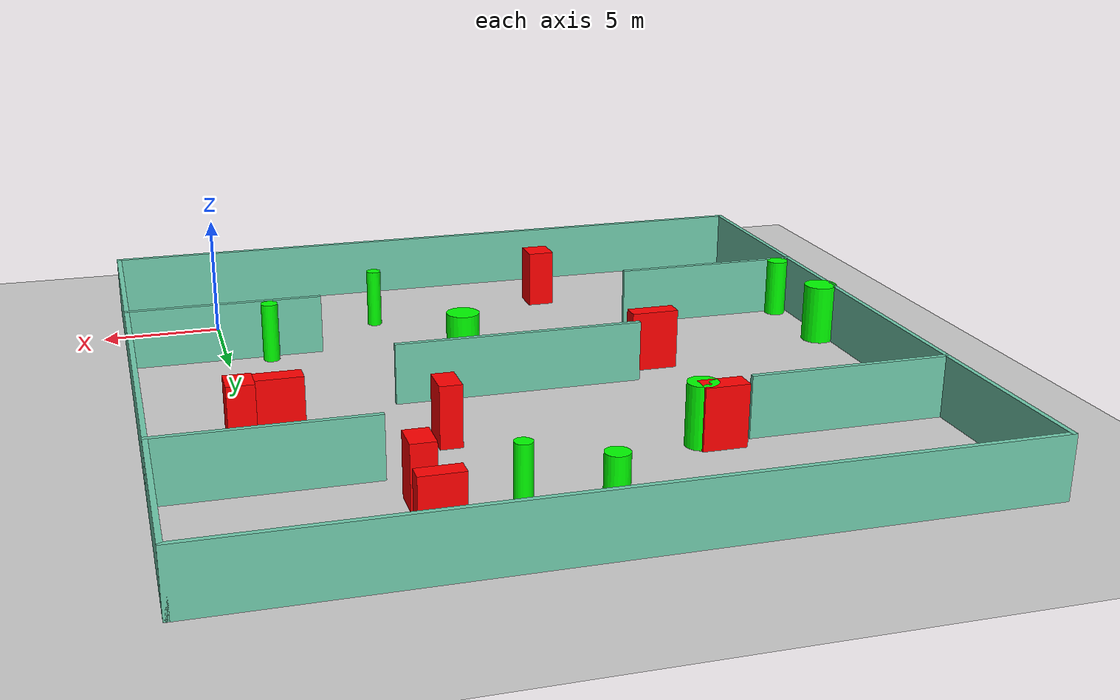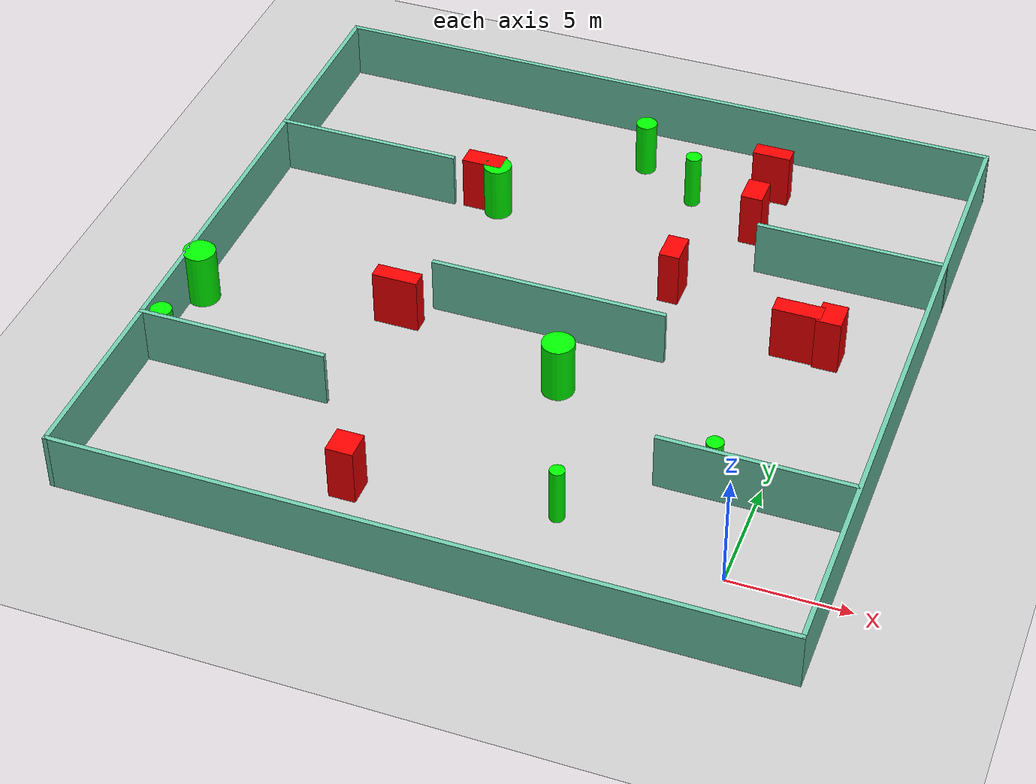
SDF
<sdf version="1.7">
 <world name="default">
  <light name="sun" type="directional">
   <pose>0 0 10 0 -0 0</pose>
   <diffuse>0.8 0.8 0.8 1</diffuse>
   <specular>0.2 0.2 0.2 1</specular>
   <attenuation>
    <range>1000</range>
    <constant>0.9</constant>
    <linear>0.01</linear>
    <quadratic>0.001</quadratic>
   </attenuation>
   <direction>-0.5 0.1 -0.9</direction>
   <spot><inner_angle>0</inner_angle><outer_angle>0</outer_angle><falloff>0</falloff></spot>
  </light>
  <model name="ground_plane">
   <static>1</static>
   <link name="link">
    <collision name="collision">
     <geometry><plane><normal>0 0 1</normal><size>100 100</size></plane></geometry>
     <surface>
      <contact><collide_bitmask>65535</collide_bitmask></contact>
      <friction><ode><mu>100</mu><mu2>50</mu2></ode></friction>
     </surface>
    </collision>
    <visual name="visual">
     <cast_shadows>0</cast_shadows>
     <geometry><plane><normal>0 0 1</normal><size>100 100</size></plane></geometry>
     <material>
      <script><uri>file://media/materials/scripts/gazebo.material</uri><name>Gazebo/Grey</name></script>
     </material>
    </visual>
   </link>
  </model>
  <gravity>0 0 -9.8</gravity>
  <magnetic_field>6e-06 2.3e-05 -4.2e-05</magnetic_field>
  <atmosphere type="adiabatic"/>
  <physics type="ode">
   <max_step_size>0.001</max_step_size>
   <real_time_factor>1</real_time_factor>
   <real_time_update_rate>1000</real_time_update_rate>
  </physics>
  <scene><ambient>0.4 0.4 0.4 1</ambient><background>0.7 0.7 0.7 1</background><shadows>1</shadows></scene>
  <spherical_coordinates>
   <surface_model>EARTH_WGS84</surface_model>
   <latitude_deg>0</latitude_deg>
   <longitude_deg>0</longitude_deg>
   <elevation>0</elevation>
   <heading_deg>0</heading_deg>
  </spherical_coordinates>
  <model name="my_base_walls">
   <link name="Wall_10">
    <collision name="Wall_10_Collision">
     <geometry><box><size>8.2 0.2 2.5</size></box></geometry>
     <pose>0 0 1.25 0 -0 0</pose>
    </collision>
    <visual name="Wall_10_Visual">
     <pose>0 0 1.25 0 -0 0</pose>
     <geometry><box><size>8.2 0.2 2.5</size></box></geometry>
     <material>
      <script><uri>file://media/materials/scripts/gazebo.material</uri><name>Gazebo/Grey</name></script>
      <ambient>0.435294 0.796078 0.67451 1</ambient>
     </material>
     <meta><layer>0</layer></meta>
    </visual>
    <pose>-11 -7 0 0 -0 0</pose>
   </link>
   <link name="Wall_12">
    <collision name="Wall_12_Collision">
     <geometry><box><size>8.2 0.2 2.5</size></box></geometry>
     <pose>0 0 1.25 0 -0 0</pose>
    </collision>
    <visual name="Wall_12_Visual">
     <pose>0 0 1.25 0 -0 0</pose>
     <geometry><box><size>8.2 0.2 2.5</size></box></geometry>
     <material>
      <script><uri>file://media/materials/scripts/gazebo.material</uri><name>Gazebo/Grey</name></script>
      <ambient>0.435294 0.796078 0.67451 1</ambient>
     </material>
     <meta><layer>0</layer></meta>
    </visual>
    <pose>-11 7 0 0 -0 0</pose>
   </link>
   <link name="Wall_14">
    <collision name="Wall_14_Collision">
     <geometry><box><size>8.2 0.2 2.5</size></box></geometry>
     <pose>0 0 1.25 0 -0 0</pose>
    </collision>
    <visual name="Wall_14_Visual">
     <pose>0 0 1.25 0 -0 0</pose>
     <geometry><box><size>8.2 0.2 2.5</size></box></geometry>
     <material>
      <script><uri>file://media/materials/scripts/gazebo.material</uri><name>Gazebo/Grey</name></script>
      <ambient>0.435294 0.796078 0.67451 1</ambient>
     </material>
     <meta><layer>0</layer></meta>
    </visual>
    <pose>11 7 0 0 -0 3.14159</pose>
   </link>
   <link name="Wall_16">
    <collision name="Wall_16_Collision">
     <geometry><box><size>10.2 0.2 2.5</size></box></geometry>
     <pose>0 0 1.25 0 -0 0</pose>
    </collision>
    <visual name="Wall_16_Visual">
     <pose>0 0 1.25 0 -0 0</pose>
     <geometry><box><size>10.2 0.2 2.5</size></box></geometry>
     <material>
      <script><uri>file://media/materials/scripts/gazebo.material</uri><name>Gazebo/Grey</name></script>
      <ambient>0.435294 0.796078 0.67451 1</ambient>
     </material>
     <meta><layer>0</layer></meta>
    </visual>
    <pose>0 0 0 0 -0 3.14159</pose>
   </link>
   <link name="Wall_2">
    <collision name="Wall_2_Collision">
     <geometry><box><size>30.2 0.2 2.5</size></box></geometry>
     <pose>0 0 1.25 0 -0 0</pose>
    </collision>
    <visual name="Wall_2_Visual">
     <pose>0 0 1.25 0 -0 0</pose>
     <geometry><box><size>30.2 0.2 2.5</size></box></geometry>
     <material>
      <script><uri>file://media/materials/scripts/gazebo.material</uri><name>Gazebo/Grey</name></script>
      <ambient>0.435294 0.796078 0.67451 1</ambient>
     </material>
     <meta><layer>0</layer></meta>
    </visual>
    <pose>0 -15 0 0 -0 3.14159</pose>
   </link>
   <link name="Wall_3">
    <collision name="Wall_3_Collision">
     <geometry><box><size>30.2 0.2 2.5</size></box></geometry>
     <pose>0 0 1.25 0 -0 0</pose>
    </collision>
    <visual name="Wall_3_Visual">
     <pose>0 0 1.25 0 -0 0</pose>
     <geometry><box><size>30.2 0.2 2.5</size></box></geometry>
     <material>
      <script><uri>file://media/materials/scripts/gazebo.material</uri><name>Gazebo/Grey</name></script>
      <ambient>0.435294 0.796078 0.67451 1</ambient>
     </material>
     <meta><layer>0</layer></meta>
    </visual>
    <pose>-15 0 0 0 -0 1.5708</pose>
   </link>
   <link name="Wall_4">
    <collision name="Wall_4_Collision">
     <geometry><box><size>30.2 0.2 2.5</size></box></geometry>
     <pose>0 0 1.25 0 -0 0</pose>
    </collision>
    <visual name="Wall_4_Visual">
     <pose>0 0 1.25 0 -0 0</pose>
     <geometry><box><size>30.2 0.2 2.5</size></box></geometry>
     <material>
      <script><uri>file://media/materials/scripts/gazebo.material</uri><name>Gazebo/Grey</name></script>
      <ambient>0.435294 0.796078 0.67451 1</ambient>
     </material>
     <meta><layer>0</layer></meta>
    </visual>
    <pose>0 15 0 0 -0 0</pose>
   </link>
   <link name="Wall_6">
    <collision name="Wall_6_Collision">
     <geometry><box><size>30.2 0.2 2.5</size></box></geometry>
     <pose>0 0 1.25 0 -0 0</pose>
    </collision>
    <visual name="Wall_6_Visual">
     <pose>0 0 1.25 0 -0 0</pose>
     <geometry><box><size>30.2 0.2 2.5</size></box></geometry>
     <material>
      <script><uri>file://media/materials/scripts/gazebo.material</uri><name>Gazebo/Grey</name></script>
      <ambient>0.435294 0.796078 0.67451 1</ambient>
     </material>
     <meta><layer>0</layer></meta>
    </visual>
    <pose>15 0 0 0 -0 1.5708</pose>
   </link>
   <link name="Wall_8">
    <collision name="Wall_8_Collision">
     <geometry><box><size>8.2 0.2 2.5</size></box></geometry>
     <pose>0 0 1.25 0 -0 0</pose>
    </collision>
    <visual name="Wall_8_Visual">
     <pose>0 0 1.25 0 -0 0</pose>
     <geometry><box><size>8.2 0.2 2.5</size></box></geometry>
     <material>
      <script><uri>file://media/materials/scripts/gazebo.material</uri><name>Gazebo/Grey</name></script>
      <ambient>0.435294 0.796078 0.67451 1</ambient>
     </material>
     <meta><layer>0</layer></meta>
    </visual>
    <pose>11 -7 0 0 -0 3.14159</pose>
   </link>
   <static>1</static>
   <pose>-11 11 0 0 -0 0</pose>
  </model>
  <model name="cylinder1">
   <static>1</static>
   <link name="link">
    <inertial>
     <mass>1</mass>
     <inertia><ixx>0.5</ixx><ixy>0</ixy><ixz>0</ixz><iyy>0.5</iyy><iyz>0</iyz><izz>1</izz></inertia>
    </inertial>
    <collision name="collision">
     <geometry><cylinder><radius>0.34516709502620163</radius><length>2.5</length></cylinder></geometry>
    </collision>
    <visual name="visual">
     <geometry><cylinder><radius>0.34516709502620163</radius><length>2.5</length></cylinder></geometry>
     <material>
      <ambient>0 1 0 1</ambient>
      <diffuse>0 1 0 1</diffuse>
      <specular>0.1 0.1 0.1 1</specular>
      <emissive>0 0 0 0</emissive>
     </material>
    </visual>
   </link>
   <pose>-8.061820041374391 21.654922493705 1.25 0 0 0</pose>
  </model>
  <model name="cylinder2">
   <static>1</static>
   <link name="link">
    <inertial>
     <mass>1</mass>
     <inertia><ixx>0.5</ixx><ixy>0</ixy><ixz>0</ixz><iyy>0.5</iyy><iyz>0</iyz><izz>1</izz></inertia>
    </inertial>
    <collision name="collision">
     <geometry><cylinder><radius>0.35242193707470104</radius><length>2.5</length></cylinder></geometry>
    </collision>
    <visual name="visual">
     <geometry><cylinder><radius>0.35242193707470104</radius><length>2.5</length></cylinder></geometry>
     <material>
      <ambient>0 1 0 1</ambient>
      <diffuse>0 1 0 1</diffuse>
      <specular>0.1 0.1 0.1 1</specular>
      <emissive>0 0 0 0</emissive>
     </material>
    </visual>
   </link>
   <pose>-1.8417265552560202 4.4900188278683535 1.25 0 0 0</pose>
  </model>
  <model name="cylinder3">
   <static>1</static>
   <link name="link">
    <inertial>
     <mass>1</mass>
     <inertia><ixx>0.5</ixx><ixy>0</ixy><ixz>0</ixz><iyy>0.5</iyy><iyz>0</iyz><izz>1</izz></inertia>
    </inertial>
    <collision name="collision">
     <geometry><cylinder><radius>0.6090767030629785</radius><length>2.5</length></cylinder></geometry>
    </collision>
    <visual name="visual">
     <geometry><cylinder><radius>0.6090767030629785</radius><length>2.5</length></cylinder></geometry>
     <material>
      <ambient>0 1 0 1</ambient>
      <diffuse>0 1 0 1</diffuse>
      <specular>0.1 0.1 0.1 1</specular>
      <emissive>0 0 0 0</emissive>
     </material>
    </visual>
   </link>
   <pose>-15.91565821275887 18.116932206867077 1.25 0 0 0</pose>
  </model>
  <model name="cylinder4">
   <static>1</static>
   <link name="link">
    <inertial>
     <mass>1</mass>
     <inertia><ixx>0.5</ixx><ixy>0</ixy><ixz>0</ixz><iyy>0.5</iyy><iyz>0</iyz><izz>1</izz></inertia>
    </inertial>
    <collision name="collision">
     <geometry><cylinder><radius>0.4544138783727207</radius><length>2.5</length></cylinder></geometry>
    </collision>
    <visual name="visual">
     <geometry><cylinder><radius>0.4544138783727207</radius><length>2.5</length></cylinder></geometry>
     <material>
      <ambient>0 1 0 1</ambient>
      <diffuse>0 1 0 1</diffuse>
      <specular>0.1 0.1 0.1 1</specular>
      <emissive>0 0 0 0</emissive>
     </material>
    </visual>
   </link>
   <pose>-25.304767624356455 4.357889093142274 1.25 0 0 0</pose>
  </model>
  <model name="cylinder5">
   <static>1</static>
   <link name="link">
    <inertial>
     <mass>1</mass>
     <inertia><ixx>0.5</ixx><ixy>0</ixy><ixz>0</ixz><iyy>0.5</iyy><iyz>0</iyz><izz>1</izz></inertia>
    </inertial>
    <collision name="collision">
     <geometry><cylinder><radius>0.6951010999913477</radius><length>2.5</length></cylinder></geometry>
    </collision>
    <visual name="visual">
     <geometry><cylinder><radius>0.6951010999913477</radius><length>2.5</length></cylinder></geometry>
     <material>
      <ambient>0 1 0 1</ambient>
      <diffuse>0 1 0 1</diffuse>
      <specular>0.1 0.1 0.1 1</specular>
      <emissive>0 0 0 0</emissive>
     </material>
    </visual>
   </link>
   <pose>-25.52452464761922 8.313421512436003 1.25 0 0 0</pose>
  </model>
  <model name="cylinder6">
   <static>1</static>
   <link name="link">
    <inertial>
     <mass>1</mass>
     <inertia><ixx>0.5</ixx><ixy>0</ixy><ixz>0</ixz><iyy>0.5</iyy><iyz>0</iyz><izz>1</izz></inertia>
    </inertial>
    <collision name="collision">
     <geometry><cylinder><radius>0.3088711019861639</radius><length>2.5</length></cylinder></geometry>
    </collision>
    <visual name="visual">
     <geometry><cylinder><radius>0.3088711019861639</radius><length>2.5</length></cylinder></geometry>
     <material>
      <ambient>0 1 0 1</ambient>
      <diffuse>0 1 0 1</diffuse>
      <specular>0.1 0.1 0.1 1</specular>
      <emissive>0 0 0 0</emissive>
     </material>
    </visual>
   </link>
   <pose>-6.984204613387014 0.9756720938497105 1.25 0 0 0</pose>
  </model>
  <model name="cylinder7">
   <static>1</static>
   <link name="link">
    <inertial>
     <mass>1</mass>
     <inertia><ixx>0.5</ixx><ixy>0</ixy><ixz>0</ixz><iyy>0.5</iyy><iyz>0</iyz><izz>1</izz></inertia>
    </inertial>
    <collision name="collision">
     <geometry><cylinder><radius>0.6902269143012889</radius><length>2.5</length></cylinder></geometry>
    </collision>
    <visual name="visual">
     <geometry><cylinder><radius>0.6902269143012889</radius><length>2.5</length></cylinder></geometry>
     <material>
      <ambient>0 1 0 1</ambient>
      <diffuse>0 1 0 1</diffuse>
      <specular>0.1 0.1 0.1 1</specular>
      <emissive>0 0 0 0</emissive>
     </material>
    </visual>
   </link>
   <pose>-9.430230386280122 7.892689521059728 1.25 0 0 0</pose>
  </model>
  <model name="cylinder8">
   <static>1</static>
   <link name="link">
    <inertial>
     <mass>1</mass>
     <inertia><ixx>0.5</ixx><ixy>0</ixy><ixz>0</ixz><iyy>0.5</iyy><iyz>0</iyz><izz>1</izz></inertia>
    </inertial>
    <collision name="collision">
     <geometry><cylinder><radius>0.45977385596675935</radius><length>2.5</length></cylinder></geometry>
    </collision>
    <visual name="visual">
     <geometry><cylinder><radius>0.45977385596675935</radius><length>2.5</length></cylinder></geometry>
     <material>
      <ambient>0 1 0 1</ambient>
      <diffuse>0 1 0 1</diffuse>
      <specular>0.1 0.1 0.1 1</specular>
      <emissive>0 0 0 0</emissive>
     </material>
    </visual>
   </link>
   <pose>-10.77183098711933 23.324212348664744 1.25 0 0 0</pose>
  </model>
  <model name="box1">
   <static>1</static>
   <link name="link">
    <inertial>
     <mass>1</mass>
     <inertia><ixx>0.083</ixx><ixy>0</ixy><ixz>0</ixz><iyy>0.083</iyy><iyz>0</iyz><izz>0.083</izz></inertia>
    </inertial>
    <collision name="collision">
     <geometry><box><size>1.6620540957836962 0.6971857841646935 2.5</size></box></geometry>
    </collision>
    <visual name="visual">
     <geometry><box><size>1.6620540957836962 0.6971857841646935 2.5</size></box></geometry>
     <material>
      <ambient>1 0 0 1</ambient>
      <diffuse>1 0 0 1</diffuse>
      <specular>0.1 0.1 0.1 1</specular>
      <emissive>0 0 0 0</emissive>
     </material>
    </visual>
    <sensor name="my_contact" type="contact">
     <contact><collision>box_collision</collision><topic>__default_topic__</topic></contact>
    </sensor>
   </link>
   <pose>-4.868964077615395 23.178057197635155 1.25 0 0 0</pose>
  </model>
  <model name="box2">
   <static>1</static>
   <link name="link">
    <inertial>
     <mass>1</mass>
     <inertia><ixx>0.083</ixx><ixy>0</ixy><ixz>0</ixz><iyy>0.083</iyy><iyz>0</iyz><izz>0.083</izz></inertia>
    </inertial>
    <collision name="collision">
     <geometry><box><size>1.0796134055613305 1.2458306727933648 2.5</size></box></geometry>
    </collision>
    <visual name="visual">
     <geometry><box><size>1.0796134055613305 1.2458306727933648 2.5</size></box></geometry>
     <material>
      <ambient>1 0 0 1</ambient>
      <diffuse>1 0 0 1</diffuse>
      <specular>0.1 0.1 0.1 1</specular>
      <emissive>0 0 0 0</emissive>
     </material>
    </visual>
    <sensor name="my_contact" type="contact">
     <contact><collision>box_collision</collision><topic>__default_topic__</topic></contact>
    </sensor>
   </link>
   <pose>0.4046496582727741 13.352407433178609 1.25 0 0 0</pose>
  </model>
  <model name="box3">
   <static>1</static>
   <link name="link">
    <inertial>
     <mass>1</mass>
     <inertia><ixx>0.083</ixx><ixy>0</ixy><ixz>0</ixz><iyy>0.083</iyy><iyz>0</iyz><izz>0.083</izz></inertia>
    </inertial>
    <collision name="collision">
     <geometry><box><size>1.759624175873339 0.8568036607493505 2.5</size></box></geometry>
    </collision>
    <visual name="visual">
     <geometry><box><size>1.759624175873339 0.8568036607493505 2.5</size></box></geometry>
     <material>
      <ambient>1 0 0 1</ambient>
      <diffuse>1 0 0 1</diffuse>
      <specular>0.1 0.1 0.1 1</specular>
      <emissive>0 0 0 0</emissive>
     </material>
    </visual>
    <sensor name="my_contact" type="contact">
     <contact><collision>box_collision</collision><topic>__default_topic__</topic></contact>
    </sensor>
   </link>
   <pose>-16.617464401569354 18.386367496107756 1.25 0 0 0</pose>
  </model>
  <model name="box4">
   <static>1</static>
   <link name="link">
    <inertial>
     <mass>1</mass>
     <inertia><ixx>0.083</ixx><ixy>0</ixy><ixz>0</ixz><iyy>0.083</iyy><iyz>0</iyz><izz>0.083</izz></inertia>
    </inertial>
    <collision name="collision">
     <geometry><box><size>0.8869411020612366 1.3776937428634362 2.5</size></box></geometry>
    </collision>
    <visual name="visual">
     <geometry><box><size>0.8869411020612366 1.3776937428634362 2.5</size></box></geometry>
     <material>
      <ambient>1 0 0 1</ambient>
      <diffuse>1 0 0 1</diffuse>
      <specular>0.1 0.1 0.1 1</specular>
      <emissive>0 0 0 0</emissive>
     </material>
    </visual>
    <sensor name="my_contact" type="contact">
     <contact><collision>box_collision</collision><topic>__default_topic__</topic></contact>
    </sensor>
   </link>
   <pose>-6.954918871294261 15.331029648712065 1.25 0 0 0</pose>
  </model>
  <model name="box5">
   <static>1</static>
   <link name="link">
    <inertial>
     <mass>1</mass>
     <inertia><ixx>0.083</ixx><ixy>0</ixy><ixz>0</ixz><iyy>0.083</iyy><iyz>0</iyz><izz>0.083</izz></inertia>
    </inertial>
    <collision name="collision">
     <geometry><box><size>1.9679009256853561 0.7169435844211827 2.5</size></box></geometry>
    </collision>
    <visual name="visual">
     <geometry><box><size>1.9679009256853561 0.7169435844211827 2.5</size></box></geometry>
     <material>
      <ambient>1 0 0 1</ambient>
      <diffuse>1 0 0 1</diffuse>
      <specular>0.1 0.1 0.1 1</specular>
      <emissive>0 0 0 0</emissive>
     </material>
    </visual>
    <sensor name="my_contact" type="contact">
     <contact><collision>box_collision</collision><topic>__default_topic__</topic></contact>
    </sensor>
   </link>
   <pose>-17.141626659426592 9.687390041864143 1.25 0 0 0</pose>
  </model>
  <model name="box6">
   <static>1</static>
   <link name="link">
    <inertial>
     <mass>1</mass>
     <inertia><ixx>0.083</ixx><ixy>0</ixy><ixz>0</ixz><iyy>0.083</iyy><iyz>0</iyz><izz>0.083</izz></inertia>
    </inertial>
    <collision name="collision">
     <geometry><box><size>0.9543055845019728 1.2934416891611473 2.5</size></box></geometry>
    </collision>
    <visual name="visual">
     <geometry><box><size>0.9543055845019728 1.2934416891611473 2.5</size></box></geometry>
     <material>
      <ambient>1 0 0 1</ambient>
      <diffuse>1 0 0 1</diffuse>
      <specular>0.1 0.1 0.1 1</specular>
      <emissive>0 0 0 0</emissive>
     </material>
    </visual>
    <sensor name="my_contact" type="contact">
     <contact><collision>box_collision</collision><topic>__default_topic__</topic></contact>
    </sensor>
   </link>
   <pose>-4.8369963963417195 20.27641904841777 1.25 0 0 0</pose>
  </model>
  <model name="box7">
   <static>1</static>
   <link name="link">
    <inertial>
     <mass>1</mass>
     <inertia><ixx>0.083</ixx><ixy>0</ixy><ixz>0</ixz><iyy>0.083</iyy><iyz>0</iyz><izz>0.083</izz></inertia>
    </inertial>
    <collision name="collision">
     <geometry><box><size>1.1377327246673845 1.190954951020966 2.5</size></box></geometry>
    </collision>
    <visual name="visual">
     <geometry><box><size>1.1377327246673845 1.190954951020966 2.5</size></box></geometry>
     <material>
      <ambient>1 0 0 1</ambient>
      <diffuse>1 0 0 1</diffuse>
      <specular>0.1 0.1 0.1 1</specular>
      <emissive>0 0 0 0</emissive>
     </material>
    </visual>
    <sensor name="my_contact" type="contact">
     <contact><collision>box_collision</collision><topic>__default_topic__</topic></contact>
    </sensor>
   </link>
   <pose>-15.128316140929838 -0.3438019210546366 1.25 0 0 0</pose>
  </model>
  <model name="box8">
   <static>1</static>
   <link name="link">
    <inertial>
     <mass>1</mass>
     <inertia><ixx>0.083</ixx><ixy>0</ixy><ixz>0</ixz><iyy>0.083</iyy><iyz>0</iyz><izz>0.083</izz></inertia>
    </inertial>
    <collision name="collision">
     <geometry><box><size>2.0336927217488556 0.7979849046743449 2.5</size></box></geometry>
    </collision>
    <visual name="visual">
     <geometry><box><size>2.0336927217488556 0.7979849046743449 2.5</size></box></geometry>
     <material>
      <ambient>1 0 0 1</ambient>
      <diffuse>1 0 0 1</diffuse>
      <specular>0.1 0.1 0.1 1</specular>
      <emissive>0 0 0 0</emissive>
     </material>
    </visual>
    <sensor name="my_contact" type="contact">
     <contact><collision>box_collision</collision><topic>__default_topic__</topic></contact>
    </sensor>
   </link>
   <pose>-0.9617933181414031 13.237485432676628 1.25 0 0 0</pose>
  </model>
 </world>
</sdf>
